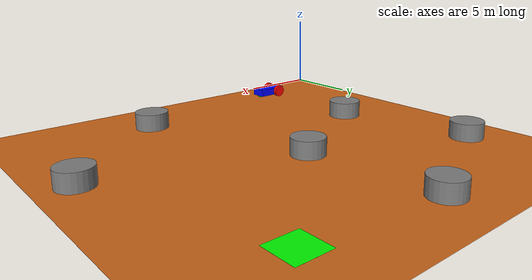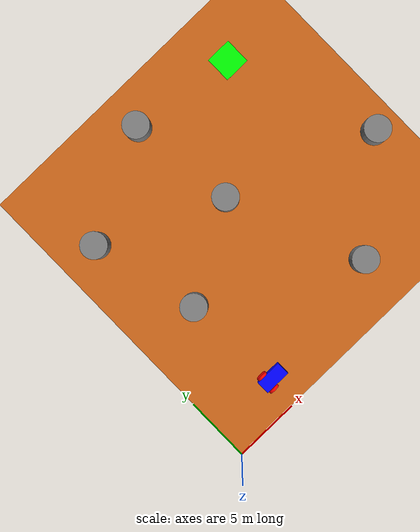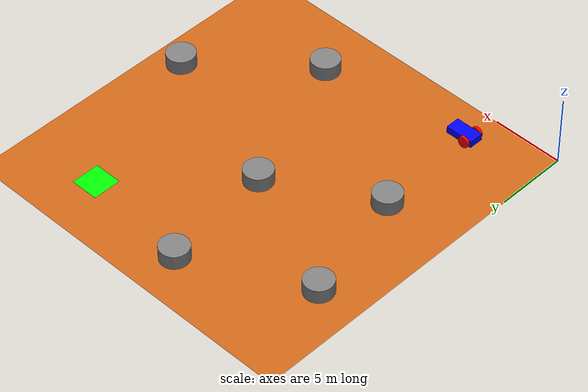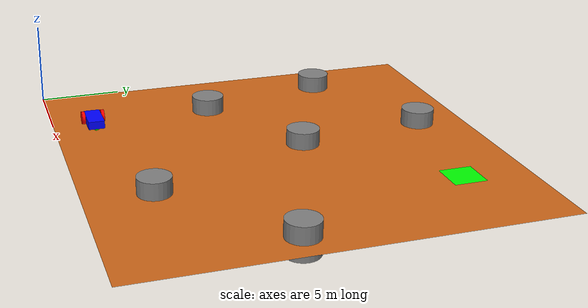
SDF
<?xml version="1.0" ?>
<sdf version="1.9">
  <world name="mars_world">

    <gravity>0 0 -3.73</gravity>

    <physics name="default_physics" type="ode">
      <max_step_size>0.001</max_step_size>
      <real_time_factor>1.0</real_time_factor>
    </physics>

    <scene>
      <ambient>0.8 0.8 0.8 1</ambient>
      <background>0.1 0.1 0.1 1</background>
      <light>0</light>
    </scene>

    <!-- Ground plane -->
    <model name="mars_ground">
      <static>true</static>
      <pose>12.5 12.5 0 0 0 0</pose>
      <link name="ground_link">
        <collision name="collision">
          <geometry>
            <plane>
              <normal>0 0 1</normal>
              <size>25 25</size>
            </plane>
          </geometry>
        </collision>
        <visual name="visual">
          <geometry>
            <plane>
              <normal>0 0 1</normal>
              <size>25 25</size>
            </plane>
          </geometry>
          <material>
            <ambient>0.8 0.4 0.1 1</ambient>
            <diffuse>0.8 0.4 0.1 1</diffuse>
            <specular>0.1 0.1 0.1 1</specular>
          </material>
        </visual>
      </link>
    </model>

    <!-- Rover -->
    <include>
      <uri>model://rover_blue</uri>
      <pose>5.0 2.5 0 0 0 0</pose>
    </include>

    <!-- Target Plane -->
    <include>
      <uri>model://target_plane</uri>
      <pose>19.0 21.0 0.02 0 0 0</pose>
    </include>

    <!-- Boulders -->
    <include>
      <uri>model://boulder</uri>
      <name>boulder_1</name>
      <pose>5 10 0 0 0 0</pose>
    </include>

    <include>
      <uri>model://boulder</uri>
      <name>boulder_2</name>
      <pose>3 18 0 0 0 0</pose>
    </include>

    <include>
      <uri>model://boulder</uri>
      <name>boulder_3</name>
      <pose>16 4 0 0 0 0</pose>
    </include>

    <include>
      <uri>model://boulder</uri>
      <name>boulder_4</name>
      <pose>12 14 0 0 0 0</pose>
    </include>

    <include>
      <uri>model://boulder</uri>
      <name>boulder_5</name>
      <pose>23 10 0 0 0 0</pose>
    </include>

    <include>
      <uri>model://boulder</uri>
      <name>boulder_6</name>
      <pose>11 22 0 0 0 0</pose>
    </include>

  </world>
</sdf>

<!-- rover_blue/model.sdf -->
<sdf version="1.9">
  <!-- Define a simple rover model -->
    <model name='rover_blue' canonical_link='chassis'>
        <static>false</static>

        <!-- Chassis (main body) of the rover -->
        <link name='chassis'>
            <pose relative_to='__model__'>0.5 0 0.4 0 0 0</pose>

            <!-- Inertial properties for physics simulation -->
            <inertial>
                <mass>1.14395</mass>
                <inertia>
                    <ixx>0.095329</ixx>
                    <ixy>0</ixy>
                    <ixz>0</ixz>
                    <iyy>0.381317</iyy>
                    <iyz>0</iyz>
                    <izz>0.476646</izz>
                </inertia>
            </inertial>

            <!-- Visual representation of the chassis -->
            <visual name='visual'>
                <geometry>
                    <box>
                        <!-- Chassis dimensions -->
                        <size>2.0 1.0 0.5</size>
                    </box>
                </geometry>
                <material> <!-- Color of the chassis (Blue) -->
                    <ambient>0.0 0.0 1.0 1</ambient>
                    <diffuse>0.0 0.0 1.0 1</diffuse>
                    <specular>0.0 0.0 1.0 1</specular>
                </material>
            </visual>

            <!-- Collision properties for physics simulation -->
            <collision name='collision'>
                <geometry>
                    <box>
                        <!-- Same size as visual -->
                        <size>2.0 1.0 0.5</size>
                    </box>
                </geometry>
            </collision>
        </link>

        <!-- The left wheel link: -->
        <link name='left_wheel'>
            <!-- Back (-x) and left (+y) position -->
            <!-- The wheel is a cylinder rotated 90 deg
            around the Roll axis -->
            <pose relative_to="chassis">
                -0.5 0.6 0 -1.5707 0 0</pose>
            <inertial>
                <mass>1</mass>
                <inertia>
                    <ixx>0.043333</ixx>
                    <ixy>0</ixy>
                    <ixz>0</ixz>
                    <iyy>0.043333</iyy>
                    <iyz>0</iyz>
                    <izz>0.08</izz>
                </inertia>
            </inertial>
            <visual name='visual'>
                <geometry>
                    <cylinder>
                        <radius>0.4</radius>
                        <length>0.2</length>
                    </cylinder>
                </geometry>
                <material>
                    <!-- Red -->
                    <ambient>1.0 0.0 0.0 1</ambient>
                    <diffuse>1.0 0.0 0.0 1</diffuse>
                    <specular>1.0 0.0 0.0 1</specular>
                </material>
            </visual>
            <collision name='collision'>
            <!-- Same as visual -->
                <geometry>
                    <cylinder>
                        <radius>0.4</radius>
                        <length>0.2</length>
                    </cylinder>
                </geometry>
            </collision>
        </link>

        <!--The right wheel is the same as the left wheel
        but with different position-->
        <link name='right_wheel'>
            <!-- Back (-x) and right (-y) position -->
            <pose relative_to="chassis"> -0.5 -0.6 0 -1.5707 0 0</pose>
            <inertial>
                <mass>1</mass>
                <inertia>
                    <ixx>0.043333</ixx>
                    <ixy>0</ixy>
                    <ixz>0</ixz>
                    <iyy>0.043333</iyy>
                    <iyz>0</iyz>
                    <izz>0.08</izz>
                </inertia>
            </inertial>
            <visual name='visual'>
                <geometry>
                    <cylinder>
                        <radius>0.4</radius>
                        <length>0.2</length>
                    </cylinder>
                </geometry>
                <material>
                    <ambient>1.0 0.0 0.0 1</ambient>
                    <diffuse>1.0 0.0 0.0 1</diffuse>
                    <specular>1.0 0.0 0.0 1</specular>
                </material>
            </visual>
            <collision name='collision'>
                <geometry>
                    <cylinder>
                        <radius>0.4</radius>
                        <length>0.2</length>
                    </cylinder>
                </geometry>
            </collision>
        </link>

        <!-- For convenience, we define a new frame
        for the caster wheel -->
        <frame name="caster_frame" attached_to='chassis'>
            <!-- Front (+x) and below (-z) -->
            <pose>0.8 0 -0.2 0 0 0</pose>
        </frame>
        <!--caster wheel-->
        <link name='caster'>
            <pose relative_to='caster_frame'/>
            <inertial>
                <mass>1</mass>
                <inertia>
                    <ixx>0.016</ixx>
                    <ixy>0</ixy>
                    <ixz>0</ixz>
                    <iyy>0.016</iyy>
                    <iyz>0</iyz>
                    <izz>0.016</izz>
                </inertia>
            </inertial>
            <visual name='visual'>
                <geometry>
                    <!-- Note: the caster wheel is a sphere,
                    not a cylinder -->
                    <sphere>
                        <radius>0.2</radius>
                    </sphere>
                </geometry>
                <material>
                    <ambient>0.0 1 0.0 1</ambient>
                    <diffuse>0.0 1 0.0 1</diffuse>
                    <specular>0.0 1 0.0 1</specular>
                </material>
            </visual>
            <collision name='collision'>
                <geometry>
                    <sphere>
                        <radius>0.2</radius>
                    </sphere>
                </geometry>
            </collision>
        </link>

        <joint name='left_wheel_joint' type='revolute'>
            <pose relative_to='left_wheel'/>
            <parent>chassis</parent>
            <child>left_wheel</child>
            <axis>
                <!--can be defined as any frame or even
                arbitrary frames-->
                <xyz expressed_in='__model__'>0 1 0</xyz>
                <limit>
                    <!--negative infinity-->
                    <lower>-1.79769e+308</lower>
                    <!--positive infinity-->
                    <upper>1.79769e+308</upper>
                </limit>
            </axis>
        </joint>

        <joint name='right_wheel_joint' type='revolute'>
            <pose relative_to='right_wheel'/>
            <parent>chassis</parent>
            <child>right_wheel</child>
            <axis>
                <xyz expressed_in='__model__'>0 1 0</xyz>
                <limit>
                    <!--negative infinity-->
                    <lower>-1.79769e+308</lower>
                    <!--positive infinity-->
                    <upper>1.79769e+308</upper>
                </limit>
            </axis>
        </joint>

        <joint name='caster_wheel' type='ball'>
            <parent>chassis</parent>
            <child>caster</child>
        </joint>

        <plugin
            filename="libignition-gazebo-diff-drive-system.so"
            name="ignition::gazebo::systems::DiffDrive">
            <left_joint>left_wheel_joint</left_joint>
            <right_joint>right_wheel_joint</right_joint>
            <wheel_separation>1.2</wheel_separation> <!-- (-0.6 to 0.6) -->
            <wheel_radius>0.4</wheel_radius>       <!-- Cylinder radius -->
            <odom_publish_frequency>1</odom_publish_frequency>
            <topic>rover_blue_cmd_vel</topic>
        </plugin>

        <plugin
            filename="libignition-gazebo-pose-publisher-system.so"
            name="ignition::gazebo::systems::PosePublisher">
            <publish_link_pose>false</publish_link_pose> <!-- Don't publish link pose -->
            <publish_nested_model_pose>true</publish_nested_model_pose> <!-- Publish nested model pose -->
            <update_frequency>1</update_frequency>
        </plugin>

    </model>
</sdf>

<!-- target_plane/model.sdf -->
<sdf version="1.9">
  <model name="target_plane">
    <static>true</static>
    <link name="link">
      <collision name="collision">
        <geometry>
          <plane><normal>0 0 1</normal><size>2 2</size></plane>
        </geometry>
      </collision>
      <visual name="visual">
        <geometry>
          <plane><normal>0 0 1</normal><size>2 2</size></plane>
        </geometry>
        <material>
          <ambient>0 1 0 1</ambient>
          <diffuse>0 1 0 1</diffuse>
        </material>
      </visual>
    </link>
  </model>
</sdf>

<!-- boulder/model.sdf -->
<sdf version="1.9">
  <model name="boulder">
    <static>true</static>
    <link name="link">
      <collision name="collision">
        <geometry>
          <cylinder><radius>1</radius><length>2</length></cylinder>
        </geometry>
      </collision>
      <visual name="visual">
        <geometry>
          <cylinder><radius>1</radius><length>2</length></cylinder>
        </geometry>
        <material>
          <ambient>0.5 0.5 0.5 1</ambient>
          <diffuse>0.5 0.5 0.5 1</diffuse>
          <specular>0.2 0.2 0.2 1</specular>
        </material>
      </visual>
    </link>
  </model>
</sdf>
